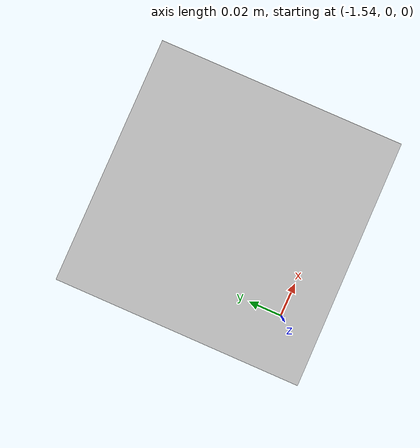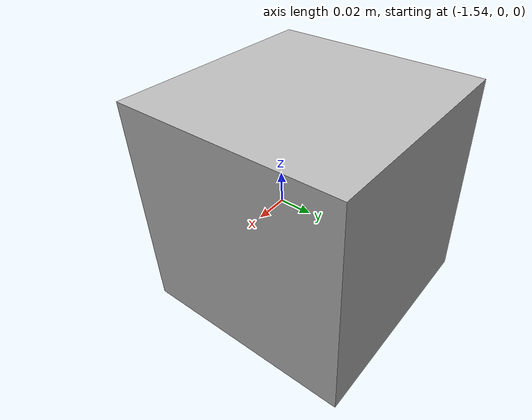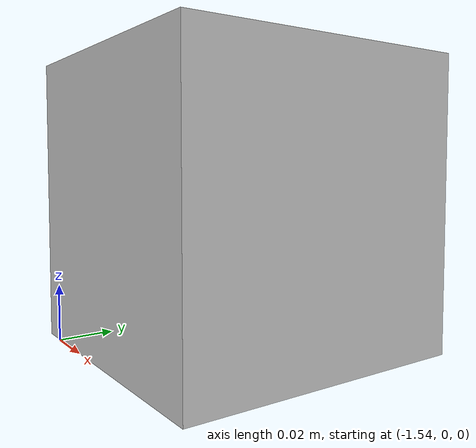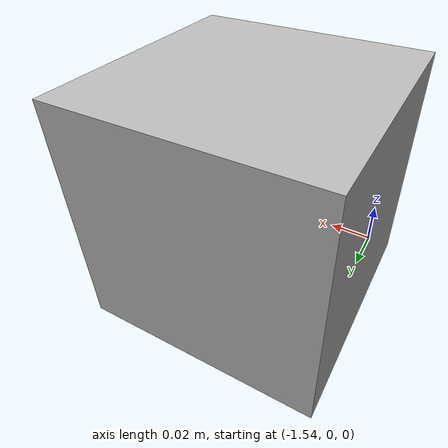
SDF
<?xml version="1.0" ?>
<sdf version="1.5">
  <model name="distorted_camera_k">
    <link name="link">
      <pose>-1.5 0.05 0.05 0 0 0</pose>
      <inertial>
        <mass>0.1</mass>
      </inertial>
      <collision name="collision">
        <geometry>
          <box>
            <size>0.1 0.1 0.1</size>
          </box>
        </geometry>
      </collision>
      <visual name="visual">
        <geometry>
          <box>
            <size>0.1 0.1 0.1</size>
          </box>
        </geometry>
      </visual>
      <sensor name="camera_sensor" type="camera">
	<plugin name="camera_gt" filename="libcamera_gt.so">
            <location>/esat/quaoar/kkelchte/simulation/data/wooden_case</location>
            <maxnumberframes>50000</maxnumberframes>
        </plugin>
        <camera>
          <horizontal_fov>1.047</horizontal_fov>
          <image>
            <width>640</width>
            <height>480</height>
          </image>
          <clip>
            <near>0.1</near>
            <far>100</far>
          </clip>
          <distortion>
            <k1>-0.25</k1>
            <k2>0.12</k2>
            <k3>0.0</k3>
            <p1>-0.00028</p1>
            <p2>-0.00005</p2>
            <center>0.5 0.5</center>
          </distortion>
        </camera>
        <always_on>1</always_on>
        <update_rate>30</update_rate>
        <visualize>true</visualize>
      </sensor>
    </link>
    <plugin name="camera_move_stoch_adapt" filename="libcamera_move_stoch_adapt.so"/>
  </model>
</sdf>
